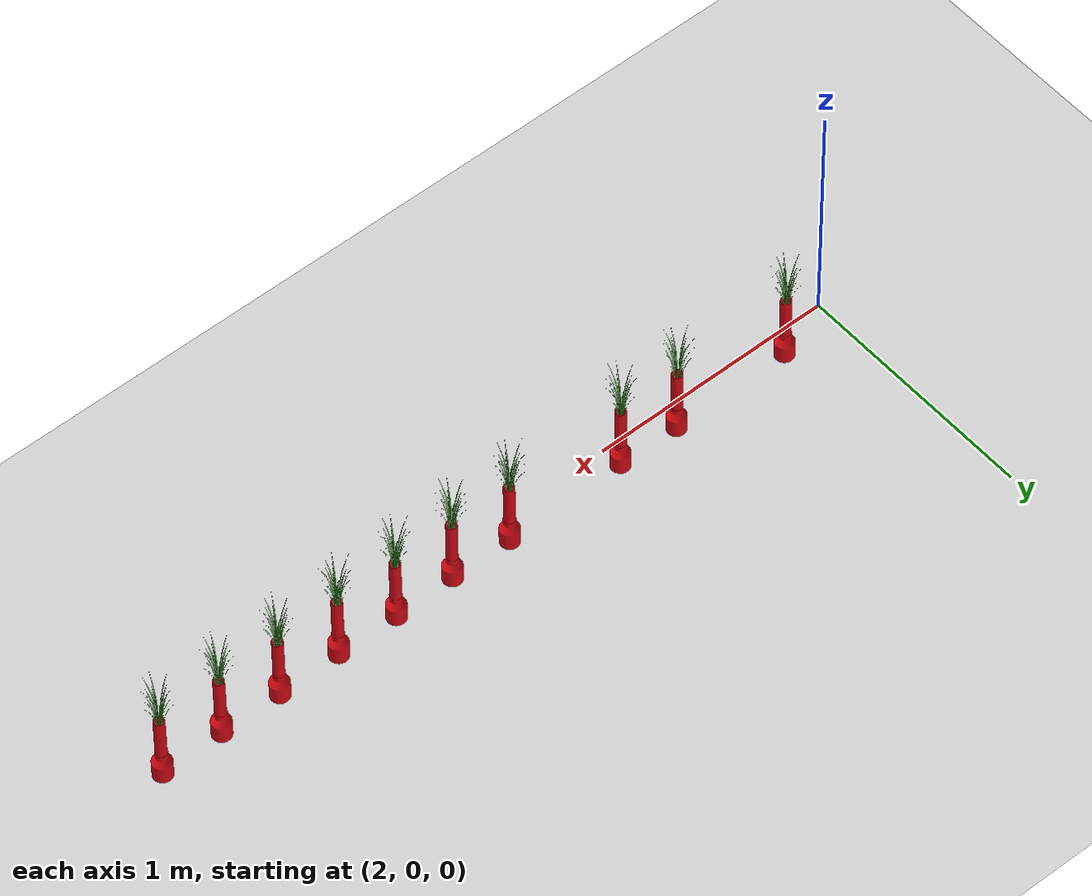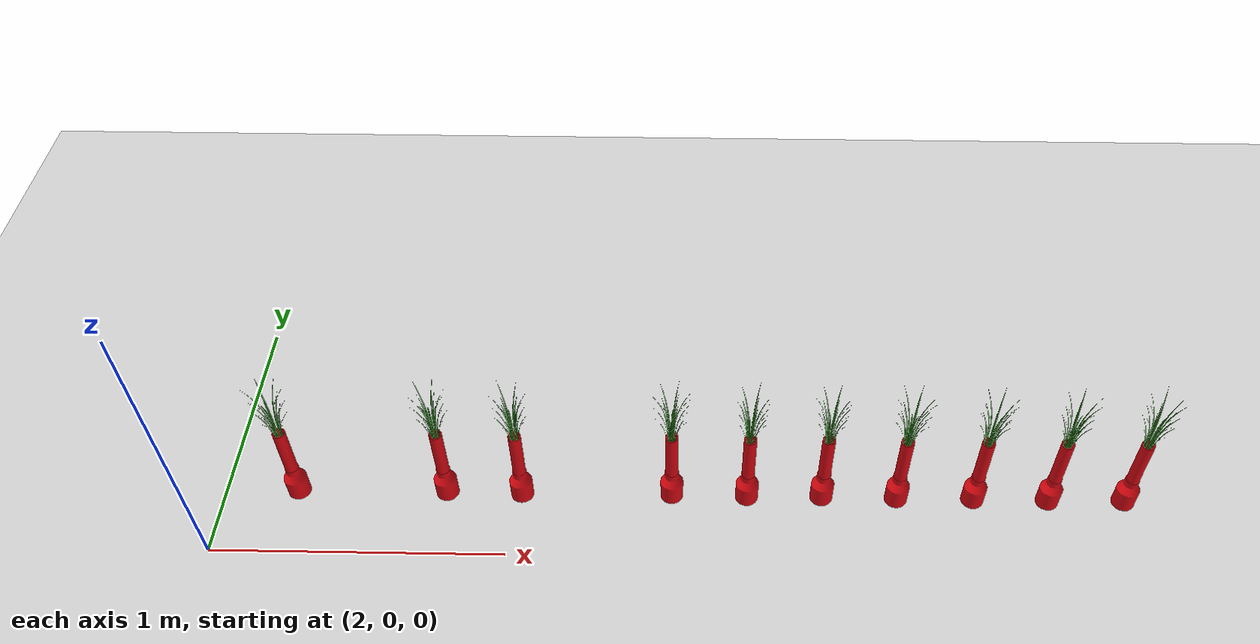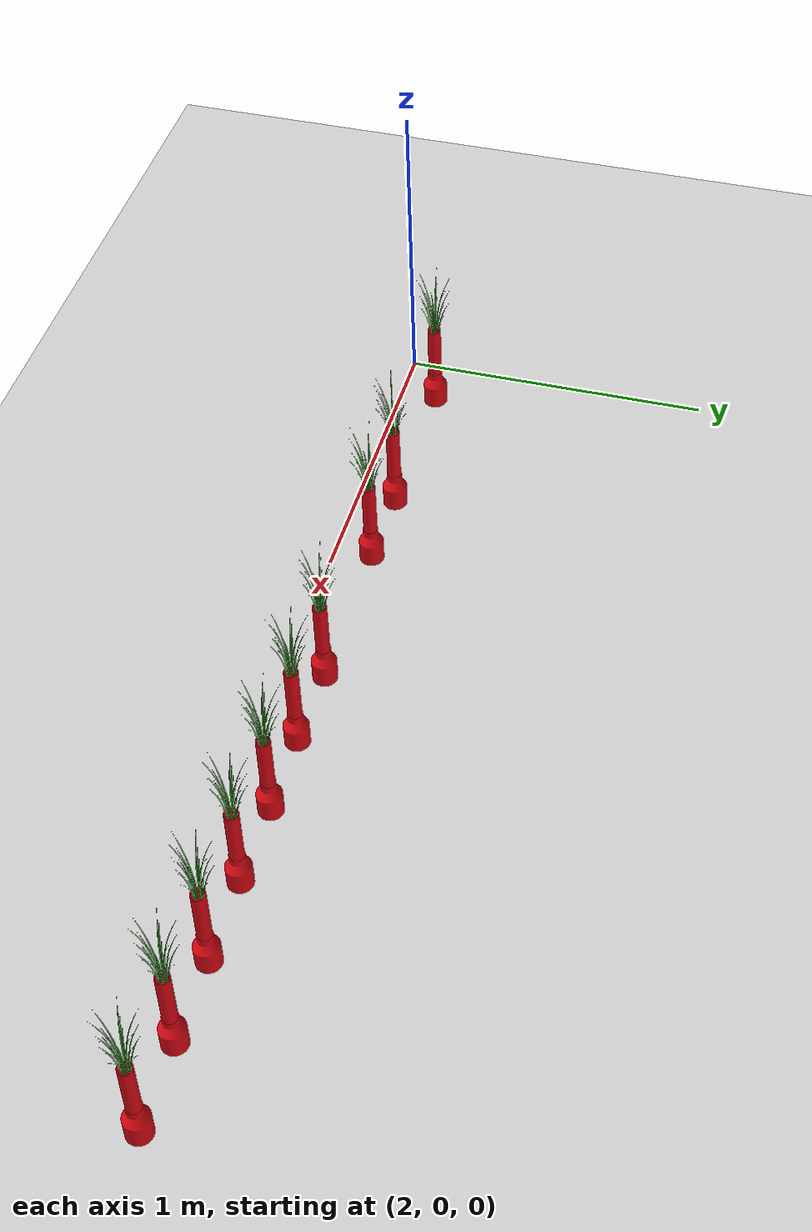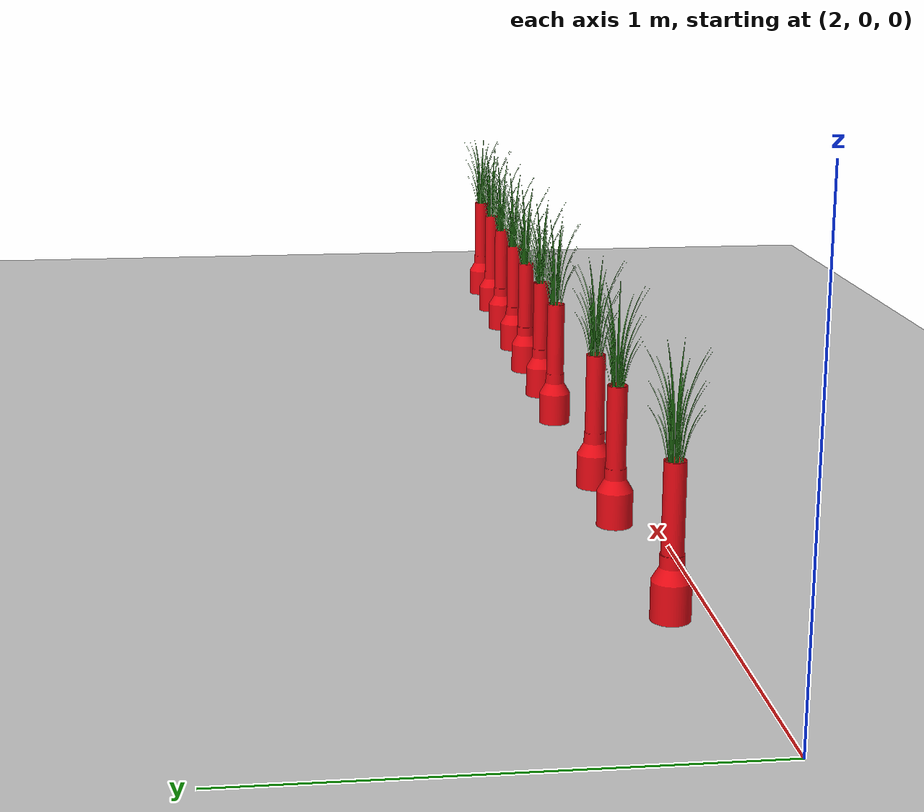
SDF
<sdf version="1.7">
 <world name="default">
  <model name="ground_plane">
   <static>1</static>
   <link name="link">
    <collision name="collision">
     <geometry><plane><normal>0 0 1</normal><size>100 100</size></plane></geometry>
     <surface>
      <contact><collide_bitmask>65535</collide_bitmask></contact>
      <friction><ode><mu>100</mu><mu2>50</mu2></ode></friction>
     </surface>
    </collision>
    <visual name="visual">
     <cast_shadows>0</cast_shadows>
     <geometry><plane><normal>0 0 1</normal><size>100 100</size></plane></geometry>
     <material>
      <script><uri>file://media/materials/scripts/gazebo.material</uri><name>Gazebo/Grey</name></script>
     </material>
    </visual>
   </link>
  </model>
  <model name="seed_red">
   <link name="link_1">
    <inertial>
     <mass>1</mass>
     <inertia>
      <ixx>0.166667</ixx>
      <ixy>0</ixy>
      <ixz>0</ixz>
      <iyy>0.166667</iyy>
      <iyz>0</iyz>
      <izz>0.166667</izz>
     </inertia>
    </inertial>
    <visual name="visual">
     <geometry>
      <mesh><uri>/home/entity014/abu2024_ws/src/abu_description/worlds/seed_red.dae</uri><scale>1 1 1</scale></mesh>
     </geometry>
    </visual>
    <collision name="collision">
     <geometry>
      <mesh><uri>/home/entity014/abu2024_ws/src/abu_description/worlds/seed_red.dae</uri><scale>1 1 1</scale></mesh>
     </geometry>
     <surface>
      <friction>
       <ode><mu>1</mu><mu2>1</mu2><fdir1>0 0 0</fdir1><slip1>0</slip1><slip2>0</slip2></ode>
       <torsional>
        <coefficient>1</coefficient>
        <patch_radius>0</patch_radius>
        <surface_radius>0</surface_radius>
        <use_patch_radius>1</use_patch_radius>
        <ode><slip>0</slip></ode>
       </torsional>
      </friction>
      <bounce><restitution_coefficient>0</restitution_coefficient><threshold>1e+06</threshold></bounce>
      <contact>
       <collide_without_contact>0</collide_without_contact>
       <collide_without_contact_bitmask>1</collide_without_contact_bitmask>
       <collide_bitmask>1</collide_bitmask>
       <ode>
        <soft_cfm>0</soft_cfm>
        <soft_erp>0.2</soft_erp>
        <kp>1e+13</kp>
        <kd>1</kd>
        <max_vel>0.01</max_vel>
        <min_depth>0</min_depth>
       </ode>
       <bullet>
        <split_impulse>1</split_impulse>
        <split_impulse_penetration_threshold>-0.01</split_impulse_penetration_threshold>
        <soft_cfm>0</soft_cfm>
        <soft_erp>0.2</soft_erp>
        <kp>1e+13</kp>
        <kd>1</kd>
       </bullet>
      </contact>
     </surface>
    </collision>
   </link>
   <static>0</static>
   <pose>2.30597 0.160398 0.24437 -1.2e-05 1e-06 -0.006202</pose>
  </model>
  <model name="seed_red_1">
   <link name="link_1">
    <inertial>
     <mass>1</mass>
     <inertia>
      <ixx>0.166667</ixx>
      <ixy>0</ixy>
      <ixz>0</ixz>
      <iyy>0.166667</iyy>
      <iyz>0</iyz>
      <izz>0.166667</izz>
     </inertia>
    </inertial>
    <visual name="visual">
     <geometry>
      <mesh><uri>/home/entity014/abu2024_ws/src/abu_description/worlds/seed_red.dae</uri><scale>1 1 1</scale></mesh>
     </geometry>
    </visual>
    <collision name="collision">
     <geometry>
      <mesh><uri>/home/entity014/abu2024_ws/src/abu_description/worlds/seed_red.dae</uri><scale>1 1 1</scale></mesh>
     </geometry>
     <surface>
      <friction>
       <ode><mu>1</mu><mu2>1</mu2><fdir1>0 0 0</fdir1><slip1>0</slip1><slip2>0</slip2></ode>
       <torsional>
        <coefficient>1</coefficient>
        <patch_radius>0</patch_radius>
        <surface_radius>0</surface_radius>
        <use_patch_radius>1</use_patch_radius>
        <ode><slip>0</slip></ode>
       </torsional>
      </friction>
      <bounce><restitution_coefficient>0</restitution_coefficient><threshold>1e+06</threshold></bounce>
      <contact>
       <collide_without_contact>0</collide_without_contact>
       <collide_without_contact_bitmask>1</collide_without_contact_bitmask>
       <collide_bitmask>1</collide_bitmask>
       <ode>
        <soft_cfm>0</soft_cfm>
        <soft_erp>0.2</soft_erp>
        <kp>1e+13</kp>
        <kd>1</kd>
        <max_vel>0.01</max_vel>
        <min_depth>0</min_depth>
       </ode>
       <bullet>
        <split_impulse>1</split_impulse>
        <split_impulse_penetration_threshold>-0.01</split_impulse_penetration_threshold>
        <soft_cfm>0</soft_cfm>
        <soft_erp>0.2</soft_erp>
        <kp>1e+13</kp>
        <kd>1</kd>
       </bullet>
      </contact>
     </surface>
    </collision>
   </link>
   <static>0</static>
   <pose>2.80489 0.163481 0.24436 -6e-06 -3e-06 0.181877</pose>
  </model>
  <model name="seed_red_2">
   <link name="link_1">
    <inertial>
     <mass>1</mass>
     <inertia>
      <ixx>0.166667</ixx>
      <ixy>0</ixy>
      <ixz>0</ixz>
      <iyy>0.166667</iyy>
      <iyz>0</iyz>
      <izz>0.166667</izz>
     </inertia>
    </inertial>
    <visual name="visual">
     <geometry>
      <mesh><uri>/home/entity014/abu2024_ws/src/abu_description/worlds/seed_red.dae</uri><scale>1 1 1</scale></mesh>
     </geometry>
    </visual>
    <collision name="collision">
     <geometry>
      <mesh><uri>/home/entity014/abu2024_ws/src/abu_description/worlds/seed_red.dae</uri><scale>1 1 1</scale></mesh>
     </geometry>
     <surface>
      <friction>
       <ode><mu>1</mu><mu2>1</mu2><fdir1>0 0 0</fdir1><slip1>0</slip1><slip2>0</slip2></ode>
       <torsional>
        <coefficient>1</coefficient>
        <patch_radius>0</patch_radius>
        <surface_radius>0</surface_radius>
        <use_patch_radius>1</use_patch_radius>
        <ode><slip>0</slip></ode>
       </torsional>
      </friction>
      <bounce><restitution_coefficient>0</restitution_coefficient><threshold>1e+06</threshold></bounce>
      <contact>
       <collide_without_contact>0</collide_without_contact>
       <collide_without_contact_bitmask>1</collide_without_contact_bitmask>
       <collide_bitmask>1</collide_bitmask>
       <ode>
        <soft_cfm>0</soft_cfm>
        <soft_erp>0.2</soft_erp>
        <kp>1e+13</kp>
        <kd>1</kd>
        <max_vel>0.01</max_vel>
        <min_depth>0</min_depth>
       </ode>
       <bullet>
        <split_impulse>1</split_impulse>
        <split_impulse_penetration_threshold>-0.01</split_impulse_penetration_threshold>
        <soft_cfm>0</soft_cfm>
        <soft_erp>0.2</soft_erp>
        <kp>1e+13</kp>
        <kd>1</kd>
       </bullet>
      </contact>
     </surface>
    </collision>
   </link>
   <static>0</static>
   <pose>3.05658 0.160245 0.244369 8e-06 -0 0.026436</pose>
  </model>
  <model name="seed_red_4">
   <link name="link_1">
    <inertial>
     <mass>1</mass>
     <inertia>
      <ixx>0.166667</ixx>
      <ixy>0</ixy>
      <ixz>0</ixz>
      <iyy>0.166667</iyy>
      <iyz>0</iyz>
      <izz>0.166667</izz>
     </inertia>
    </inertial>
    <visual name="visual">
     <geometry>
      <mesh><uri>/home/entity014/abu2024_ws/src/abu_description/worlds/seed_red.dae</uri><scale>1 1 1</scale></mesh>
     </geometry>
    </visual>
    <collision name="collision">
     <geometry>
      <mesh><uri>/home/entity014/abu2024_ws/src/abu_description/worlds/seed_red.dae</uri><scale>1 1 1</scale></mesh>
     </geometry>
     <surface>
      <friction>
       <ode><mu>1</mu><mu2>1</mu2><fdir1>0 0 0</fdir1><slip1>0</slip1><slip2>0</slip2></ode>
       <torsional>
        <coefficient>1</coefficient>
        <patch_radius>0</patch_radius>
        <surface_radius>0</surface_radius>
        <use_patch_radius>1</use_patch_radius>
        <ode><slip>0</slip></ode>
       </torsional>
      </friction>
      <bounce><restitution_coefficient>0</restitution_coefficient><threshold>1e+06</threshold></bounce>
      <contact>
       <collide_without_contact>0</collide_without_contact>
       <collide_without_contact_bitmask>1</collide_without_contact_bitmask>
       <collide_bitmask>1</collide_bitmask>
       <ode>
        <soft_cfm>0</soft_cfm>
        <soft_erp>0.2</soft_erp>
        <kp>1e+13</kp>
        <kd>1</kd>
        <max_vel>0.01</max_vel>
        <min_depth>0</min_depth>
       </ode>
       <bullet>
        <split_impulse>1</split_impulse>
        <split_impulse_penetration_threshold>-0.01</split_impulse_penetration_threshold>
        <soft_cfm>0</soft_cfm>
        <soft_erp>0.2</soft_erp>
        <kp>1e+13</kp>
        <kd>1</kd>
       </bullet>
      </contact>
     </surface>
    </collision>
   </link>
   <static>0</static>
   <pose>3.55706 0.165017 0.244359 1e-06 1e-06 0.007021</pose>
  </model>
  <model name="seed_red_5">
   <link name="link_1">
    <inertial>
     <mass>1</mass>
     <inertia>
      <ixx>0.166667</ixx>
      <ixy>0</ixy>
      <ixz>0</ixz>
      <iyy>0.166667</iyy>
      <iyz>0</iyz>
      <izz>0.166667</izz>
     </inertia>
    </inertial>
    <visual name="visual">
     <geometry>
      <mesh><uri>/home/entity014/abu2024_ws/src/abu_description/worlds/seed_red.dae</uri><scale>1 1 1</scale></mesh>
     </geometry>
    </visual>
    <collision name="collision">
     <geometry>
      <mesh><uri>/home/entity014/abu2024_ws/src/abu_description/worlds/seed_red.dae</uri><scale>1 1 1</scale></mesh>
     </geometry>
     <surface>
      <friction>
       <ode><mu>1</mu><mu2>1</mu2><fdir1>0 0 0</fdir1><slip1>0</slip1><slip2>0</slip2></ode>
       <torsional>
        <coefficient>1</coefficient>
        <patch_radius>0</patch_radius>
        <surface_radius>0</surface_radius>
        <use_patch_radius>1</use_patch_radius>
        <ode><slip>0</slip></ode>
       </torsional>
      </friction>
      <bounce><restitution_coefficient>0</restitution_coefficient><threshold>1e+06</threshold></bounce>
      <contact>
       <collide_without_contact>0</collide_without_contact>
       <collide_without_contact_bitmask>1</collide_without_contact_bitmask>
       <collide_bitmask>1</collide_bitmask>
       <ode>
        <soft_cfm>0</soft_cfm>
        <soft_erp>0.2</soft_erp>
        <kp>1e+13</kp>
        <kd>1</kd>
        <max_vel>0.01</max_vel>
        <min_depth>0</min_depth>
       </ode>
       <bullet>
        <split_impulse>1</split_impulse>
        <split_impulse_penetration_threshold>-0.01</split_impulse_penetration_threshold>
        <soft_cfm>0</soft_cfm>
        <soft_erp>0.2</soft_erp>
        <kp>1e+13</kp>
        <kd>1</kd>
       </bullet>
      </contact>
     </surface>
    </collision>
   </link>
   <static>0</static>
   <pose>3.80696 0.160767 0.24437 8e-06 -9e-06 -0.002747</pose>
  </model>
  <model name="seed_red_6">
   <link name="link_1">
    <inertial>
     <mass>1</mass>
     <inertia>
      <ixx>0.166667</ixx>
      <ixy>0</ixy>
      <ixz>0</ixz>
      <iyy>0.166667</iyy>
      <iyz>0</iyz>
      <izz>0.166667</izz>
     </inertia>
    </inertial>
    <visual name="visual">
     <geometry>
      <mesh><uri>/home/entity014/abu2024_ws/src/abu_description/worlds/seed_red.dae</uri><scale>1 1 1</scale></mesh>
     </geometry>
    </visual>
    <collision name="collision">
     <geometry>
      <mesh><uri>/home/entity014/abu2024_ws/src/abu_description/worlds/seed_red.dae</uri><scale>1 1 1</scale></mesh>
     </geometry>
     <surface>
      <friction>
       <ode><mu>1</mu><mu2>1</mu2><fdir1>0 0 0</fdir1><slip1>0</slip1><slip2>0</slip2></ode>
       <torsional>
        <coefficient>1</coefficient>
        <patch_radius>0</patch_radius>
        <surface_radius>0</surface_radius>
        <use_patch_radius>1</use_patch_radius>
        <ode><slip>0</slip></ode>
       </torsional>
      </friction>
      <bounce><restitution_coefficient>0</restitution_coefficient><threshold>1e+06</threshold></bounce>
      <contact>
       <collide_without_contact>0</collide_without_contact>
       <collide_without_contact_bitmask>1</collide_without_contact_bitmask>
       <collide_bitmask>1</collide_bitmask>
       <ode>
        <soft_cfm>0</soft_cfm>
        <soft_erp>0.2</soft_erp>
        <kp>1e+13</kp>
        <kd>1</kd>
        <max_vel>0.01</max_vel>
        <min_depth>0</min_depth>
       </ode>
       <bullet>
        <split_impulse>1</split_impulse>
        <split_impulse_penetration_threshold>-0.01</split_impulse_penetration_threshold>
        <soft_cfm>0</soft_cfm>
        <soft_erp>0.2</soft_erp>
        <kp>1e+13</kp>
        <kd>1</kd>
       </bullet>
      </contact>
     </surface>
    </collision>
   </link>
   <static>0</static>
   <pose>4.0561 0.163957 0.244369 -2e-06 -2e-06 -0.032654</pose>
  </model>
  <model name="seed_red_7">
   <link name="link_1">
    <inertial>
     <mass>1</mass>
     <inertia>
      <ixx>0.166667</ixx>
      <ixy>0</ixy>
      <ixz>0</ixz>
      <iyy>0.166667</iyy>
      <iyz>0</iyz>
      <izz>0.166667</izz>
     </inertia>
    </inertial>
    <visual name="visual">
     <geometry>
      <mesh><uri>/home/entity014/abu2024_ws/src/abu_description/worlds/seed_red.dae</uri><scale>1 1 1</scale></mesh>
     </geometry>
    </visual>
    <collision name="collision">
     <geometry>
      <mesh><uri>/home/entity014/abu2024_ws/src/abu_description/worlds/seed_red.dae</uri><scale>1 1 1</scale></mesh>
     </geometry>
     <surface>
      <friction>
       <ode><mu>1</mu><mu2>1</mu2><fdir1>0 0 0</fdir1><slip1>0</slip1><slip2>0</slip2></ode>
       <torsional>
        <coefficient>1</coefficient>
        <patch_radius>0</patch_radius>
        <surface_radius>0</surface_radius>
        <use_patch_radius>1</use_patch_radius>
        <ode><slip>0</slip></ode>
       </torsional>
      </friction>
      <bounce><restitution_coefficient>0</restitution_coefficient><threshold>1e+06</threshold></bounce>
      <contact>
       <collide_without_contact>0</collide_without_contact>
       <collide_without_contact_bitmask>1</collide_without_contact_bitmask>
       <collide_bitmask>1</collide_bitmask>
       <ode>
        <soft_cfm>0</soft_cfm>
        <soft_erp>0.2</soft_erp>
        <kp>1e+13</kp>
        <kd>1</kd>
        <max_vel>0.01</max_vel>
        <min_depth>0</min_depth>
       </ode>
       <bullet>
        <split_impulse>1</split_impulse>
        <split_impulse_penetration_threshold>-0.01</split_impulse_penetration_threshold>
        <soft_cfm>0</soft_cfm>
        <soft_erp>0.2</soft_erp>
        <kp>1e+13</kp>
        <kd>1</kd>
       </bullet>
      </contact>
     </surface>
    </collision>
   </link>
   <static>0</static>
   <pose>4.30494 0.160938 0.244369 1e-06 0 -0.020629</pose>
  </model>
  <model name="seed_red_8">
   <link name="link_1">
    <inertial>
     <mass>1</mass>
     <inertia>
      <ixx>0.166667</ixx>
      <ixy>0</ixy>
      <ixz>0</ixz>
      <iyy>0.166667</iyy>
      <iyz>0</iyz>
      <izz>0.166667</izz>
     </inertia>
    </inertial>
    <visual name="visual">
     <geometry>
      <mesh><uri>/home/entity014/abu2024_ws/src/abu_description/worlds/seed_red.dae</uri><scale>1 1 1</scale></mesh>
     </geometry>
    </visual>
    <collision name="collision">
     <geometry>
      <mesh><uri>/home/entity014/abu2024_ws/src/abu_description/worlds/seed_red.dae</uri><scale>1 1 1</scale></mesh>
     </geometry>
     <surface>
      <friction>
       <ode><mu>1</mu><mu2>1</mu2><fdir1>0 0 0</fdir1><slip1>0</slip1><slip2>0</slip2></ode>
       <torsional>
        <coefficient>1</coefficient>
        <patch_radius>0</patch_radius>
        <surface_radius>0</surface_radius>
        <use_patch_radius>1</use_patch_radius>
        <ode><slip>0</slip></ode>
       </torsional>
      </friction>
      <bounce><restitution_coefficient>0</restitution_coefficient><threshold>1e+06</threshold></bounce>
      <contact>
       <collide_without_contact>0</collide_without_contact>
       <collide_without_contact_bitmask>1</collide_without_contact_bitmask>
       <collide_bitmask>1</collide_bitmask>
       <ode>
        <soft_cfm>0</soft_cfm>
        <soft_erp>0.2</soft_erp>
        <kp>1e+13</kp>
        <kd>1</kd>
        <max_vel>0.01</max_vel>
        <min_depth>0</min_depth>
       </ode>
       <bullet>
        <split_impulse>1</split_impulse>
        <split_impulse_penetration_threshold>-0.01</split_impulse_penetration_threshold>
        <soft_cfm>0</soft_cfm>
        <soft_erp>0.2</soft_erp>
        <kp>1e+13</kp>
        <kd>1</kd>
       </bullet>
      </contact>
     </surface>
    </collision>
   </link>
   <static>0</static>
   <pose>4.5602 0.162002 0.244369 -4e-06 -1e-06 0.000196</pose>
  </model>
  <model name="seed_red_9">
   <link name="link_1">
    <inertial>
     <mass>1</mass>
     <inertia>
      <ixx>0.166667</ixx>
      <ixy>0</ixy>
      <ixz>0</ixz>
      <iyy>0.166667</iyy>
      <iyz>0</iyz>
      <izz>0.166667</izz>
     </inertia>
    </inertial>
    <visual name="visual">
     <geometry>
      <mesh><uri>/home/entity014/abu2024_ws/src/abu_description/worlds/seed_red.dae</uri><scale>1 1 1</scale></mesh>
     </geometry>
    </visual>
    <collision name="collision">
     <geometry>
      <mesh><uri>/home/entity014/abu2024_ws/src/abu_description/worlds/seed_red.dae</uri><scale>1 1 1</scale></mesh>
     </geometry>
     <surface>
      <friction>
       <ode><mu>1</mu><mu2>1</mu2><fdir1>0 0 0</fdir1><slip1>0</slip1><slip2>0</slip2></ode>
       <torsional>
        <coefficient>1</coefficient>
        <patch_radius>0</patch_radius>
        <surface_radius>0</surface_radius>
        <use_patch_radius>1</use_patch_radius>
        <ode><slip>0</slip></ode>
       </torsional>
      </friction>
      <bounce><restitution_coefficient>0</restitution_coefficient><threshold>1e+06</threshold></bounce>
      <contact>
       <collide_without_contact>0</collide_without_contact>
       <collide_without_contact_bitmask>1</collide_without_contact_bitmask>
       <collide_bitmask>1</collide_bitmask>
       <ode>
        <soft_cfm>0</soft_cfm>
        <soft_erp>0.2</soft_erp>
        <kp>1e+13</kp>
        <kd>1</kd>
        <max_vel>0.01</max_vel>
        <min_depth>0</min_depth>
       </ode>
       <bullet>
        <split_impulse>1</split_impulse>
        <split_impulse_penetration_threshold>-0.01</split_impulse_penetration_threshold>
        <soft_cfm>0</soft_cfm>
        <soft_erp>0.2</soft_erp>
        <kp>1e+13</kp>
        <kd>1</kd>
       </bullet>
      </contact>
     </surface>
    </collision>
   </link>
   <static>0</static>
   <pose>4.80888 0.160135 0.24436 -4e-06 -0 0.116225</pose>
  </model>
  <model name="seed_red_10">
   <link name="link_1">
    <inertial>
     <mass>1</mass>
     <inertia>
      <ixx>0.166667</ixx>
      <ixy>0</ixy>
      <ixz>0</ixz>
      <iyy>0.166667</iyy>
      <iyz>0</iyz>
      <izz>0.166667</izz>
     </inertia>
    </inertial>
    <visual name="visual">
     <geometry>
      <mesh><uri>/home/entity014/abu2024_ws/src/abu_description/worlds/seed_red.dae</uri><scale>1 1 1</scale></mesh>
     </geometry>
    </visual>
    <collision name="collision">
     <geometry>
      <mesh><uri>/home/entity014/abu2024_ws/src/abu_description/worlds/seed_red.dae</uri><scale>1 1 1</scale></mesh>
     </geometry>
     <surface>
      <friction>
       <ode><mu>1</mu><mu2>1</mu2><fdir1>0 0 0</fdir1><slip1>0</slip1><slip2>0</slip2></ode>
       <torsional>
        <coefficient>1</coefficient>
        <patch_radius>0</patch_radius>
        <surface_radius>0</surface_radius>
        <use_patch_radius>1</use_patch_radius>
        <ode><slip>0</slip></ode>
       </torsional>
      </friction>
      <bounce><restitution_coefficient>0</restitution_coefficient><threshold>1e+06</threshold></bounce>
      <contact>
       <collide_without_contact>0</collide_without_contact>
       <collide_without_contact_bitmask>1</collide_without_contact_bitmask>
       <collide_bitmask>1</collide_bitmask>
       <ode>
        <soft_cfm>0</soft_cfm>
        <soft_erp>0.2</soft_erp>
        <kp>1e+13</kp>
        <kd>1</kd>
        <max_vel>0.01</max_vel>
        <min_depth>0</min_depth>
       </ode>
       <bullet>
        <split_impulse>1</split_impulse>
        <split_impulse_penetration_threshold>-0.01</split_impulse_penetration_threshold>
        <soft_cfm>0</soft_cfm>
        <soft_erp>0.2</soft_erp>
        <kp>1e+13</kp>
        <kd>1</kd>
       </bullet>
      </contact>
     </surface>
    </collision>
   </link>
   <static>0</static>
   <pose>5.06177 0.161648 0.24436 -2e-06 9e-06 0.173465</pose>
  </model>
 </world>
</sdf>
